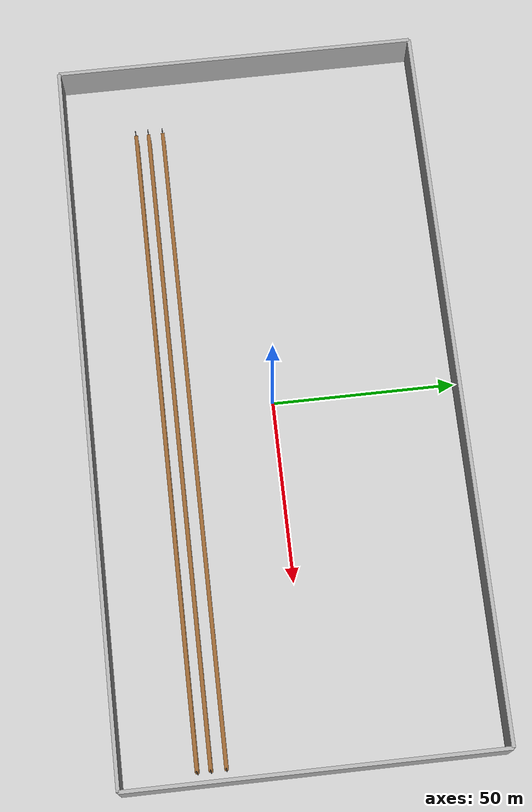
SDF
<?xml version="1.0" ?>
<sdf version="1.7">
  <world name="warehouse">

    <!-- Physics settings -->
    <physics name="1ms" type="ode">
      <max_step_size>0.001</max_step_size>
      <real_time_factor>1.0</real_time_factor>
      <real_time_update_rate>1000</real_time_update_rate>
    </physics>

    <!-- Lighting -->
    <light name="sun" type="directional">
      <cast_shadows>true</cast_shadows>
      <pose>0 0 10 0 0 0</pose>
      <diffuse>0.8 0.8 0.8 1</diffuse>
      <specular>0.2 0.2 0.2 1</specular>
      <attenuation>
        <range>1000</range>
        <constant>0.9</constant>
        <linear>0.01</linear>
        <quadratic>0.001</quadratic>
      </attenuation>
      <direction>-0.5 0.1 -0.9</direction>
    </light>

    <!-- Additional warehouse lighting -->
    <light name="warehouse_light_1" type="point">
      <pose>50 0 8 0 0 0</pose>
      <diffuse>0.7 0.7 0.7 1</diffuse>
      <specular>0.1 0.1 0.1 1</specular>
      <attenuation>
        <range>50</range>
        <constant>0.1</constant>
        <linear>0.01</linear>
        <quadratic>0.001</quadratic>
      </attenuation>
    </light>

    <light name="warehouse_light_2" type="point">
      <pose>100 0 8 0 0 0</pose>
      <diffuse>0.7 0.7 0.7 1</diffuse>
      <specular>0.1 0.1 0.1 1</specular>
      <attenuation>
        <range>50</range>
        <constant>0.1</constant>
        <linear>0.01</linear>
        <quadratic>0.001</quadratic>
      </attenuation>
    </light>

    <!-- Ground plane -->
    <model name="ground_plane">
      <static>true</static>
      <link name="link">
        <collision name="collision">
          <geometry>
            <plane>
              <normal>0 0 1</normal>
              <size>400 200</size>
            </plane>
          </geometry>
        </collision>
        <visual name="visual">
          <geometry>
            <plane>
              <normal>0 0 1</normal>
              <size>400 200</size>
            </plane>
          </geometry>
          <material>
            <ambient>0.8 0.8 0.8 1</ambient>
            <diffuse>0.8 0.8 0.8 1</diffuse>
            <specular>0.8 0.8 0.8 1</specular>
          </material>
        </visual>
      </link>
    </model>

    <!-- Warehouse walls -->
    <model name="warehouse_walls">
      <static>true</static>

      <!-- Front wall -->
      <link name="front_wall">
        <pose>0 -50 6 0 0 0</pose>
        <collision name="collision">
          <geometry>
            <box>
              <size>200 1 12</size>
            </box>
          </geometry>
        </collision>
        <visual name="visual">
          <geometry>
            <box>
              <size>200 1 12</size>
            </box>
          </geometry>
          <material>
            <ambient>0.7 0.7 0.7 1</ambient>
            <diffuse>0.7 0.7 0.7 1</diffuse>
          </material>
        </visual>
      </link>

      <!-- Back wall -->
      <link name="back_wall">
        <pose>0 50 6 0 0 0</pose>
        <collision name="collision">
          <geometry>
            <box>
              <size>200 1 12</size>
            </box>
          </geometry>
        </collision>
        <visual name="visual">
          <geometry>
            <box>
              <size>200 1 12</size>
            </box>
          </geometry>
          <material>
            <ambient>0.7 0.7 0.7 1</ambient>
            <diffuse>0.7 0.7 0.7 1</diffuse>
          </material>
        </visual>
      </link>

      <!-- Left wall -->
      <link name="left_wall">
        <pose>-100 0 6 0 0 0</pose>
        <collision name="collision">
          <geometry>
            <box>
              <size>1 100 12</size>
            </box>
          </geometry>
        </collision>
        <visual name="visual">
          <geometry>
            <box>
              <size>1 100 12</size>
            </box>
          </geometry>
          <material>
            <ambient>0.7 0.7 0.7 1</ambient>
            <diffuse>0.7 0.7 0.7 1</diffuse>
          </material>
        </visual>
      </link>

      <!-- Right wall -->
      <link name="right_wall">
        <pose>100 0 6 0 0 0</pose>
        <collision name="collision">
          <geometry>
            <box>
              <size>1 100 12</size>
            </box>
          </geometry>
        </collision>
        <visual name="visual">
          <geometry>
            <box>
              <size>1 100 12</size>
            </box>
          </geometry>
          <material>
            <ambient>0.7 0.7 0.7 1</ambient>
            <diffuse>0.7 0.7 0.7 1</diffuse>
          </material>
        </visual>
      </link>
    </model>

    <!-- Warehouse Racks (simplified version - 3 racks for initial testing) -->
    <!-- Rack 1 -->
    <model name="rack_1">
      <static>true</static>
      <pose>-80 -30 0 0 0 0</pose>

      <!-- Rack frame - vertical posts -->
      <link name="post_1">
        <pose>0 0 6 0 0 0</pose>
        <collision name="collision">
          <geometry>
            <box>
              <size>0.2 0.2 12</size>
            </box>
          </geometry>
        </collision>
        <visual name="visual">
          <geometry>
            <box>
              <size>0.2 0.2 12</size>
            </box>
          </geometry>
          <material>
            <ambient>0.3 0.3 0.3 1</ambient>
            <diffuse>0.3 0.3 0.3 1</diffuse>
          </material>
        </visual>
      </link>

      <link name="post_2">
        <pose>177 0 6 0 0 0</pose>
        <collision name="collision">
          <geometry>
            <box>
              <size>0.2 0.2 12</size>
            </box>
          </geometry>
        </collision>
        <visual name="visual">
          <geometry>
            <box>
              <size>0.2 0.2 12</size>
            </box>
          </geometry>
          <material>
            <ambient>0.3 0.3 0.3 1</ambient>
            <diffuse>0.3 0.3 0.3 1</diffuse>
          </material>
        </visual>
      </link>

      <!-- Rack shelves -->
      <link name="shelf_1">
        <pose>88.5 0 3 0 0 0</pose>
        <collision name="collision">
          <geometry>
            <box>
              <size>177 1 0.1</size>
            </box>
          </geometry>
        </collision>
        <visual name="visual">
          <geometry>
            <box>
              <size>177 1 0.1</size>
            </box>
          </geometry>
          <material>
            <ambient>0.6 0.4 0.2 1</ambient>
            <diffuse>0.6 0.4 0.2 1</diffuse>
          </material>
        </visual>
      </link>

      <link name="shelf_2">
        <pose>88.5 0 6 0 0 0</pose>
        <collision name="collision">
          <geometry>
            <box>
              <size>177 1 0.1</size>
            </box>
          </geometry>
        </collision>
        <visual name="visual">
          <geometry>
            <box>
              <size>177 1 0.1</size>
            </box>
          </geometry>
          <material>
            <ambient>0.6 0.4 0.2 1</ambient>
            <diffuse>0.6 0.4 0.2 1</diffuse>
          </material>
        </visual>
      </link>

      <link name="shelf_3">
        <pose>88.5 0 9 0 0 0</pose>
        <collision name="collision">
          <geometry>
            <box>
              <size>177 1 0.1</size>
            </box>
          </geometry>
        </collision>
        <visual name="visual">
          <geometry>
            <box>
              <size>177 1 0.1</size>
            </box>
          </geometry>
          <material>
            <ambient>0.6 0.4 0.2 1</ambient>
            <diffuse>0.6 0.4 0.2 1</diffuse>
          </material>
        </visual>
      </link>
    </model>

    <!-- Rack 2 -->
    <model name="rack_2">
      <static>true</static>
      <pose>-80 -26.5 0 0 0 0</pose>

      <!-- Similar structure to rack_1 but mirrored -->
      <link name="post_1">
        <pose>0 0 6 0 0 0</pose>
        <collision name="collision">
          <geometry>
            <box>
              <size>0.2 0.2 12</size>
            </box>
          </geometry>
        </collision>
        <visual name="visual">
          <geometry>
            <box>
              <size>0.2 0.2 12</size>
            </box>
          </geometry>
          <material>
            <ambient>0.3 0.3 0.3 1</ambient>
            <diffuse>0.3 0.3 0.3 1</diffuse>
          </material>
        </visual>
      </link>

      <link name="post_2">
        <pose>177 0 6 0 0 0</pose>
        <collision name="collision">
          <geometry>
            <box>
              <size>0.2 0.2 12</size>
            </box>
          </geometry>
        </collision>
        <visual name="visual">
          <geometry>
            <box>
              <size>0.2 0.2 12</size>
            </box>
          </geometry>
          <material>
            <ambient>0.3 0.3 0.3 1</ambient>
            <diffuse>0.3 0.3 0.3 1</diffuse>
          </material>
        </visual>
      </link>

      <!-- Shelves -->
      <link name="shelf_1">
        <pose>88.5 0 3 0 0 0</pose>
        <collision name="collision">
          <geometry>
            <box>
              <size>177 1 0.1</size>
            </box>
          </geometry>
        </collision>
        <visual name="visual">
          <geometry>
            <box>
              <size>177 1 0.1</size>
            </box>
          </geometry>
          <material>
            <ambient>0.6 0.4 0.2 1</ambient>
            <diffuse>0.6 0.4 0.2 1</diffuse>
          </material>
        </visual>
      </link>

      <link name="shelf_2">
        <pose>88.5 0 6 0 0 0</pose>
        <collision name="collision">
          <geometry>
            <box>
              <size>177 1 0.1</size>
            </box>
          </geometry>
        </collision>
        <visual name="visual">
          <geometry>
            <box>
              <size>177 1 0.1</size>
            </box>
          </geometry>
          <material>
            <ambient>0.6 0.4 0.2 1</ambient>
            <diffuse>0.6 0.4 0.2 1</diffuse>
          </material>
        </visual>
      </link>

      <link name="shelf_3">
        <pose>88.5 0 9 0 0 0</pose>
        <collision name="collision">
          <geometry>
            <box>
              <size>177 1 0.1</size>
            </box>
          </geometry>
        </collision>
        <visual name="visual">
          <geometry>
            <box>
              <size>177 1 0.1</size>
            </box>
          </geometry>
          <material>
            <ambient>0.6 0.4 0.2 1</ambient>
            <diffuse>0.6 0.4 0.2 1</diffuse>
          </material>
        </visual>
      </link>
    </model>

    <!-- Rack 3 -->
    <model name="rack_3">
      <static>true</static>
      <pose>-80 -22.5 0 0 0 0</pose>

      <!-- Similar structure to previous racks -->
      <link name="post_1">
        <pose>0 0 6 0 0 0</pose>
        <collision name="collision">
          <geometry>
            <box>
              <size>0.2 0.2 12</size>
            </box>
          </geometry>
        </collision>
        <visual name="visual">
          <geometry>
            <box>
              <size>0.2 0.2 12</size>
            </box>
          </geometry>
          <material>
            <ambient>0.3 0.3 0.3 1</ambient>
            <diffuse>0.3 0.3 0.3 1</diffuse>
          </material>
        </visual>
      </link>

      <link name="post_2">
        <pose>177 0 6 0 0 0</pose>
        <collision name="collision">
          <geometry>
            <box>
              <size>0.2 0.2 12</size>
            </box>
          </geometry>
        </collision>
        <visual name="visual">
          <geometry>
            <box>
              <size>0.2 0.2 12</size>
            </box>
          </geometry>
          <material>
            <ambient>0.3 0.3 0.3 1</ambient>
            <diffuse>0.3 0.3 0.3 1</diffuse>
          </material>
        </visual>
      </link>

      <!-- Shelves -->
      <link name="shelf_1">
        <pose>88.5 0 3 0 0 0</pose>
        <collision name="collision">
          <geometry>
            <box>
              <size>177 1 0.1</size>
            </box>
          </geometry>
        </collision>
        <visual name="visual">
          <geometry>
            <box>
              <size>177 1 0.1</size>
            </box>
          </geometry>
          <material>
            <ambient>0.6 0.4 0.2 1</ambient>
            <diffuse>0.6 0.4 0.2 1</diffuse>
          </material>
        </visual>
      </link>

      <link name="shelf_2">
        <pose>88.5 0 6 0 0 0</pose>
        <collision name="collision">
          <geometry>
            <box>
              <size>177 1 0.1</size>
            </box>
          </geometry>
        </collision>
        <visual name="visual">
          <geometry>
            <box>
              <size>177 1 0.1</size>
            </box>
          </geometry>
          <material>
            <ambient>0.6 0.4 0.2 1</ambient>
            <diffuse>0.6 0.4 0.2 1</diffuse>
          </material>
        </visual>
      </link>

      <link name="shelf_3">
        <pose>88.5 0 9 0 0 0</pose>
        <collision name="collision">
          <geometry>
            <box>
              <size>177 1 0.1</size>
            </box>
          </geometry>
        </collision>
        <visual name="visual">
          <geometry>
            <box>
              <size>177 1 0.1</size>
            </box>
          </geometry>
          <material>
            <ambient>0.6 0.4 0.2 1</ambient>
            <diffuse>0.6 0.4 0.2 1</diffuse>
          </material>
        </visual>
      </link>
    </model>

    <!-- GUI -->
    <gui fullscreen="0">
      <camera name="user_camera">
        <pose>-20 -20 15 0 0.3 0.78</pose>
        <view_controller>orbit</view_controller>
      </camera>
    </gui>

  </world>
</sdf>
